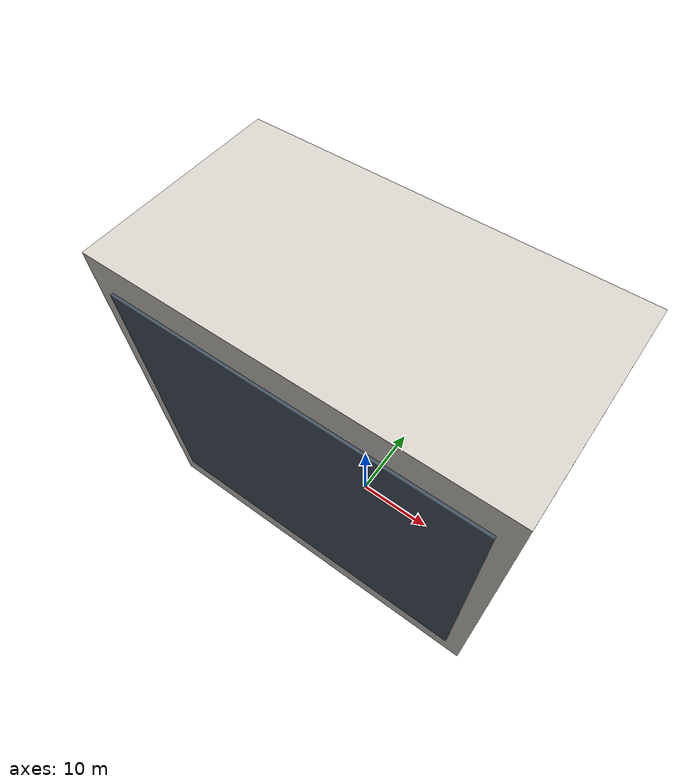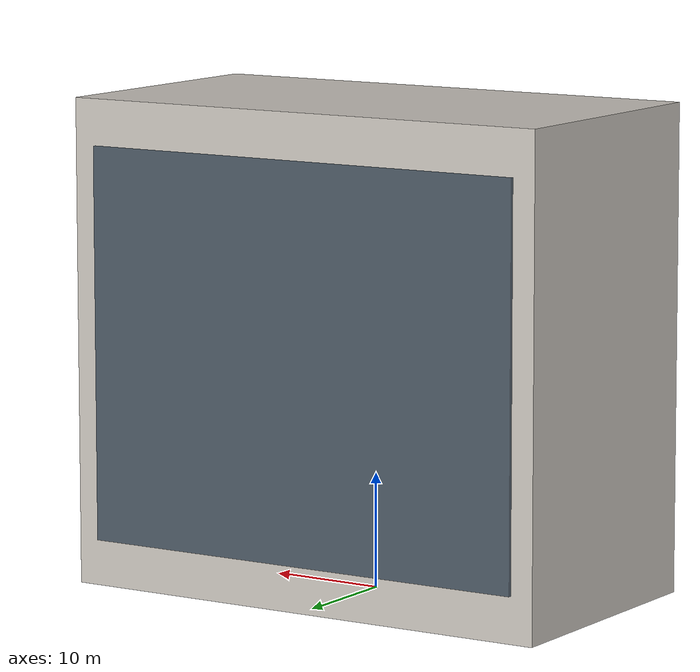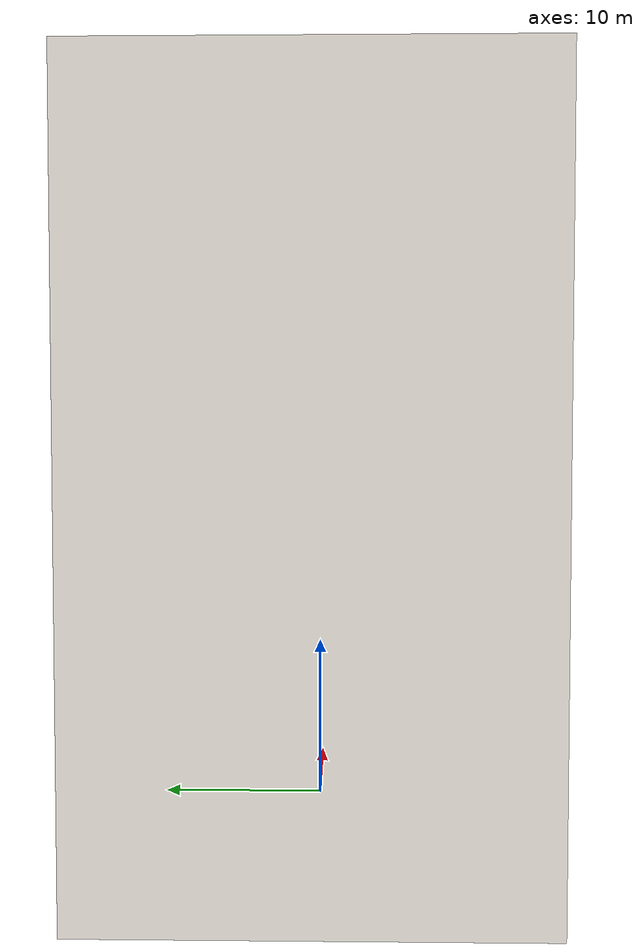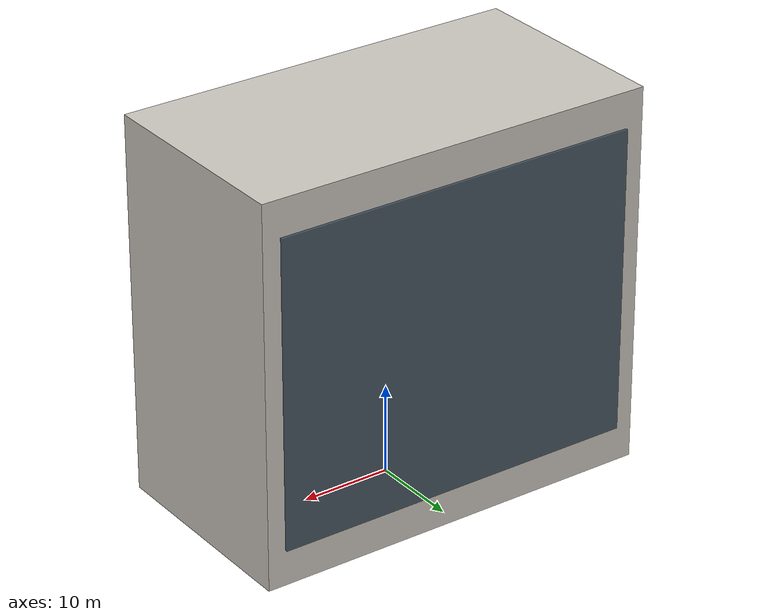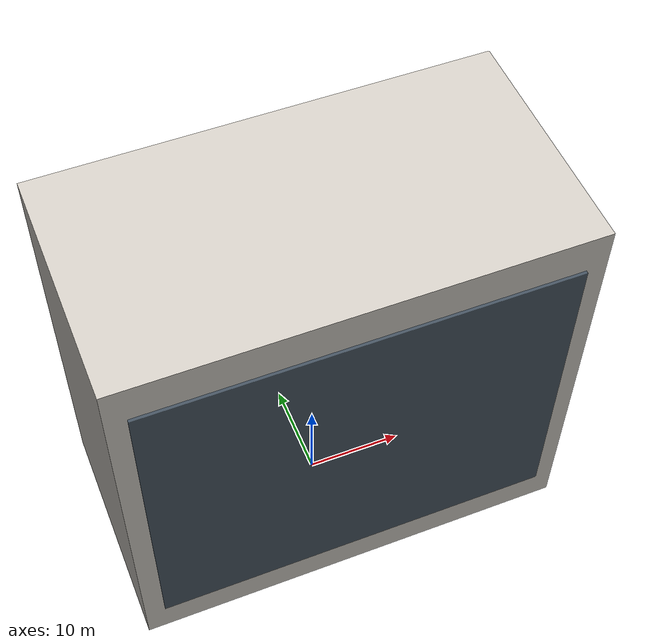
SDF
<?xml version="1.0" ?>
<sdf version="1.8">
  <model name="gx1_west_end_block">
    <static>true</static>
    <link name="block_link">
      <collision name="col"><pose>0 0 21.0 0 0 0</pose><geometry><box><size>45.0 24.0 42.0</size></box></geometry></collision>
      <visual name="main_vis"><pose>0 0 21.0 0 0 0</pose><geometry><box><size>45.0 24.0 42.0</size></box></geometry><material><ambient>0.73 0.72 0.70 1</ambient><diffuse>0.80 0.78 0.75 1</diffuse></material></visual>
      <visual name="balconies"><pose>0 0 21.0 0 0 0</pose><geometry><box><size>41.0 24.6 34.0</size></box></geometry><material><ambient>0.22 0.26 0.32 0.88</ambient><diffuse>0.28 0.34 0.40 0.88</diffuse></material></visual>
    </link>
  </model>
</sdf>
